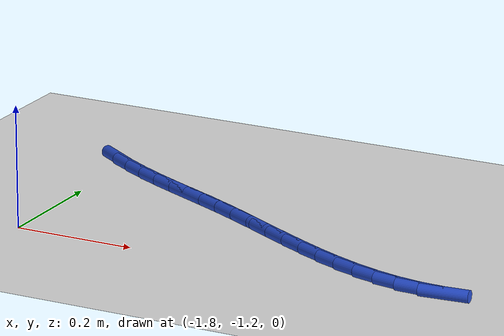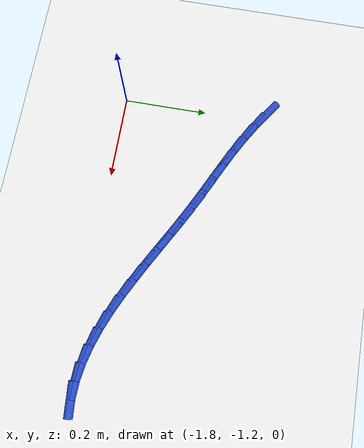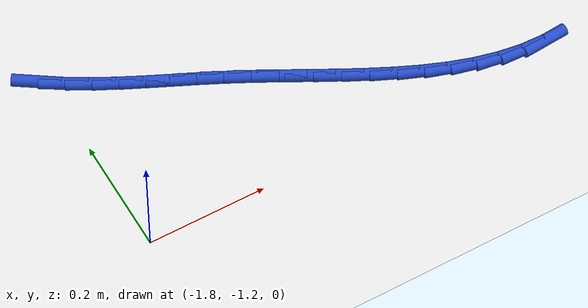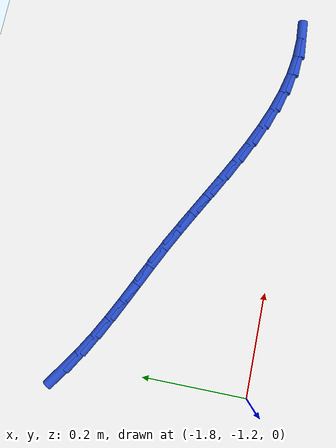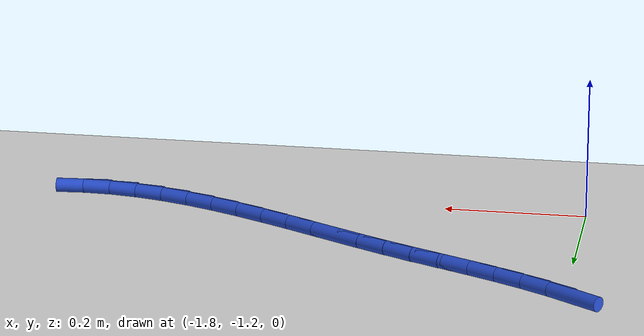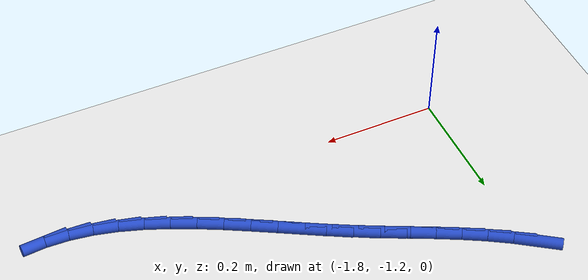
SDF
<sdf version="1.6">
 <world name="default">
  <model name="ground_plane">
   <static>1</static>
   <link name="link">
    <collision name="collision">
     <geometry><plane><normal>0 0 1</normal><size>100 100</size></plane></geometry>
     <surface><friction><ode><mu>100</mu><mu2>50</mu2></ode></friction></surface>
    </collision>
    <visual name="visual">
     <cast_shadows>0</cast_shadows>
     <geometry><plane><normal>0 0 1</normal><size>100 100</size></plane></geometry>
     <material>
      <script><uri>file://media/materials/scripts/gazebo.material</uri><name>Gazebo/WhiteGlow</name></script>
     </material>
    </visual>
   </link>
  </model>
  <model name="line">
   <link name="link_101">
    <pose>-1.814908989899806 -0.8519008712987979 0.01 0 1.57 -0.5960750755200789</pose>
    <collision name="collision">
     <geometry><cylinder><radius>0.01</radius><length>0.08</length></cylinder></geometry>
    </collision>
    <visual name="visual">
     <material>
      <script><name>Gazebo/Blue</name><uri>file://media/materials/scripts/gazebo.material</uri></script>
     </material>
     <geometry><cylinder><radius>0.01</radius><length>0.08</length></cylinder></geometry>
    </visual>
   </link>
   <link name="link_102">
    <pose>-1.7794459726980365 -0.8759586364331196 0.01 0 1.57 -0.5399700237985333</pose>
    <collision name="collision">
     <geometry><cylinder><radius>0.01</radius><length>0.08</length></cylinder></geometry>
    </collision>
    <visual name="visual">
     <material>
      <script><name>Gazebo/Blue</name><uri>file://media/materials/scripts/gazebo.material</uri></script>
     </material>
     <geometry><cylinder><radius>0.01</radius><length>0.08</length></cylinder></geometry>
    </visual>
   </link>
   <link name="link_103">
    <pose>-1.7430538427240991 -0.8977716743413989 0.01 0 1.57 -0.4955046062098071</pose>
    <collision name="collision">
     <geometry><cylinder><radius>0.01</radius><length>0.08</length></cylinder></geometry>
    </collision>
    <visual name="visual">
     <material>
      <script><name>Gazebo/Blue</name><uri>file://media/materials/scripts/gazebo.material</uri></script>
     </material>
     <geometry><cylinder><radius>0.01</radius><length>0.08</length></cylinder></geometry>
    </visual>
   </link>
   <link name="link_104">
    <pose>-1.7058796344399103 -0.917863580119115 0.01 0 1.57 -0.46490541975444255</pose>
    <collision name="collision">
     <geometry><cylinder><radius>0.01</radius><length>0.08</length></cylinder></geometry>
    </collision>
    <visual name="visual">
     <material>
      <script><name>Gazebo/Blue</name><uri>file://media/materials/scripts/gazebo.material</uri></script>
     </material>
     <geometry><cylinder><radius>0.01</radius><length>0.08</length></cylinder></geometry>
    </visual>
   </link>
   <link name="link_105">
    <pose>-1.668061092796275 -0.9368323491014806 0.01 0 1.57 -0.4485281783276075</pose>
    <collision name="collision">
     <geometry><cylinder><radius>0.01</radius><length>0.08</length></cylinder></geometry>
    </collision>
    <visual name="visual">
     <material>
      <script><name>Gazebo/Blue</name><uri>file://media/materials/scripts/gazebo.material</uri></script>
     </material>
     <geometry><cylinder><radius>0.01</radius><length>0.08</length></cylinder></geometry>
    </visual>
   </link>
   <link name="link_106">
    <pose>-1.6297359627440002 -0.9552759766237111 0.01 0 1.57 -0.4463299033197552</pose>
    <collision name="collision">
     <geometry><cylinder><radius>0.01</radius><length>0.08</length></cylinder></geometry>
    </collision>
    <visual name="visual">
     <material>
      <script><name>Gazebo/Blue</name><uri>file://media/materials/scripts/gazebo.material</uri></script>
     </material>
     <geometry><cylinder><radius>0.01</radius><length>0.08</length></cylinder></geometry>
    </visual>
   </link>
   <link name="link_107">
    <pose>-1.591041989233893 -0.9737924580210193 0.01 0 1.57 -0.457975523023273</pose>
    <collision name="collision">
     <geometry><cylinder><radius>0.01</radius><length>0.08</length></cylinder></geometry>
    </collision>
    <visual name="visual">
     <material>
      <script><name>Gazebo/Blue</name><uri>file://media/materials/scripts/gazebo.material</uri></script>
     </material>
     <geometry><cylinder><radius>0.01</radius><length>0.08</length></cylinder></geometry>
    </visual>
   </link>
   <link name="link_108">
    <pose>-1.5521169172167602 -0.9929797886286197 0.01 0 1.57 -0.48061842126913606</pose>
    <collision name="collision">
     <geometry><cylinder><radius>0.01</radius><length>0.08</length></cylinder></geometry>
    </collision>
    <visual name="visual">
     <material>
      <script><name>Gazebo/Blue</name><uri>file://media/materials/scripts/gazebo.material</uri></script>
     </material>
     <geometry><cylinder><radius>0.01</radius><length>0.08</length></cylinder></geometry>
    </visual>
   </link>
   <link name="link_109">
    <pose>-1.5130852212822274 -1.0133308029820065 0.01 0 1.57 -0.49851467447994907</pose>
    <collision name="collision">
     <geometry><cylinder><radius>0.01</radius><length>0.08</length></cylinder></geometry>
    </collision>
    <visual name="visual">
     <material>
      <script><name>Gazebo/Blue</name><uri>file://media/materials/scripts/gazebo.material</uri></script>
     </material>
     <geometry><cylinder><radius>0.01</radius><length>0.08</length></cylinder></geometry>
    </visual>
   </link>
   <link name="link_110">
    <pose>-1.4739805310417118 -1.034618435801638 0.01 0 1.57 -0.5056897653478503</pose>
    <collision name="collision">
     <geometry><cylinder><radius>0.01</radius><length>0.08</length></cylinder></geometry>
    </collision>
    <visual name="visual">
     <material>
      <script><name>Gazebo/Blue</name><uri>file://media/materials/scripts/gazebo.material</uri></script>
     </material>
     <geometry><cylinder><radius>0.01</radius><length>0.08</length></cylinder></geometry>
    </visual>
   </link>
   <link name="link_111">
    <pose>-1.4347984260643727 -1.0563140947569165 0.01 0 1.57 -0.5024291813071842</pose>
    <collision name="collision">
     <geometry><cylinder><radius>0.01</radius><length>0.08</length></cylinder></geometry>
    </collision>
    <visual name="visual">
     <material>
      <script><name>Gazebo/Blue</name><uri>file://media/materials/scripts/gazebo.material</uri></script>
     </material>
     <geometry><cylinder><radius>0.01</radius><length>0.08</length></cylinder></geometry>
    </visual>
   </link>
   <link name="link_112">
    <pose>-1.3955343567154987 -1.0778881636428923 0.01 0 1.57 -0.48868795682692473</pose>
    <collision name="collision">
     <geometry><cylinder><radius>0.01</radius><length>0.08</length></cylinder></geometry>
    </collision>
    <visual name="visual">
     <material>
      <script><name>Gazebo/Blue</name><uri>file://media/materials/scripts/gazebo.material</uri></script>
     </material>
     <geometry><cylinder><radius>0.01</radius><length>0.08</length></cylinder></geometry>
    </visual>
   </link>
   <link name="link_113">
    <pose>-1.3561837733603785 -1.098811026254618 0.01 0 1.57 -0.46407785612475905</pose>
    <collision name="collision">
     <geometry><cylinder><radius>0.01</radius><length>0.08</length></cylinder></geometry>
    </collision>
    <visual name="visual">
     <material>
      <script><name>Gazebo/Blue</name><uri>file://media/materials/scripts/gazebo.material</uri></script>
     </material>
     <geometry><cylinder><radius>0.01</radius><length>0.08</length></cylinder></geometry>
    </visual>
   </link>
   <link name="link_114">
    <pose>-1.3167421263643002 -1.1185530663871444 0.01 0 1.57 -0.4278869764455812</pose>
    <collision name="collision">
     <geometry><cylinder><radius>0.01</radius><length>0.08</length></cylinder></geometry>
    </collision>
    <visual name="visual">
     <material>
      <script><name>Gazebo/Blue</name><uri>file://media/materials/scripts/gazebo.material</uri></script>
     </material>
     <geometry><cylinder><radius>0.01</radius><length>0.08</length></cylinder></geometry>
    </visual>
   </link>
   <link name="link_115">
    <pose>-1.2772048660925523 -1.136584667835523 0.01 0 1.57 -0.3791262444666133</pose>
    <collision name="collision">
     <geometry><cylinder><radius>0.01</radius><length>0.08</length></cylinder></geometry>
    </collision>
    <visual name="visual">
     <material>
      <script><name>Gazebo/Blue</name><uri>file://media/materials/scripts/gazebo.material</uri></script>
     </material>
     <geometry><cylinder><radius>0.01</radius><length>0.08</length></cylinder></geometry>
    </visual>
   </link>
   <link name="link_116">
    <pose>-1.2375674429104229 -1.1523762143948058 0.01 0 1.57 -0.31663515011963655</pose>
    <collision name="collision">
     <geometry><cylinder><radius>0.01</radius><length>0.08</length></cylinder></geometry>
    </collision>
    <visual name="visual">
     <material>
      <script><name>Gazebo/Blue</name><uri>file://media/materials/scripts/gazebo.material</uri></script>
     </material>
     <geometry><cylinder><radius>0.01</radius><length>0.08</length></cylinder></geometry>
    </visual>
   </link>
   <link name="link_117">
    <pose>-1.1978253071832006 -1.1653980898600431 0.01 0 1.57 -0.23929637588374503</pose>
    <collision name="collision">
     <geometry><cylinder><radius>0.01</radius><length>0.08</length></cylinder></geometry>
    </collision>
    <visual name="visual">
     <material>
      <script><name>Gazebo/Blue</name><uri>file://media/materials/scripts/gazebo.material</uri></script>
     </material>
     <geometry><cylinder><radius>0.01</radius><length>0.08</length></cylinder></geometry>
    </visual>
   </link>
   <link name="link_118">
    <pose>-1.1579739092761738 -1.1751206780262864 0.01 0 1.57 -0.14641507821080996</pose>
    <collision name="collision">
     <geometry><cylinder><radius>0.01</radius><length>0.08</length></cylinder></geometry>
    </collision>
    <visual name="visual">
     <material>
      <script><name>Gazebo/Blue</name><uri>file://media/materials/scripts/gazebo.material</uri></script>
     </material>
     <geometry><cylinder><radius>0.01</radius><length>0.08</length></cylinder></geometry>
    </visual>
   </link>
   <link name="link_119">
    <pose>-1.1180086995546312 -1.181014362688588 0.01 0 1.57 -0.0383206607356425</pose>
    <collision name="collision">
     <geometry><cylinder><radius>0.01</radius><length>0.08</length></cylinder></geometry>
    </collision>
    <visual name="visual">
     <material>
      <script><name>Gazebo/Blue</name><uri>file://media/materials/scripts/gazebo.material</uri></script>
     </material>
     <geometry><cylinder><radius>0.01</radius><length>0.08</length></cylinder></geometry>
    </visual>
   </link>
   <link name="link_120">
    <pose>-1.0779252564679473 -1.1825511390240877 0.01 0 1.57 0.07598337819017538</pose>
    <collision name="collision">
     <geometry><cylinder><radius>0.01</radius><length>0.08</length></cylinder></geometry>
    </collision>
    <visual name="visual">
     <material>
      <script><name>Gazebo/Blue</name><uri>file://media/materials/scripts/gazebo.material</uri></script>
     </material>
     <geometry><cylinder><radius>0.01</radius><length>0.08</length></cylinder></geometry>
    </visual>
   </link>
  </model>
 </world>
</sdf>
